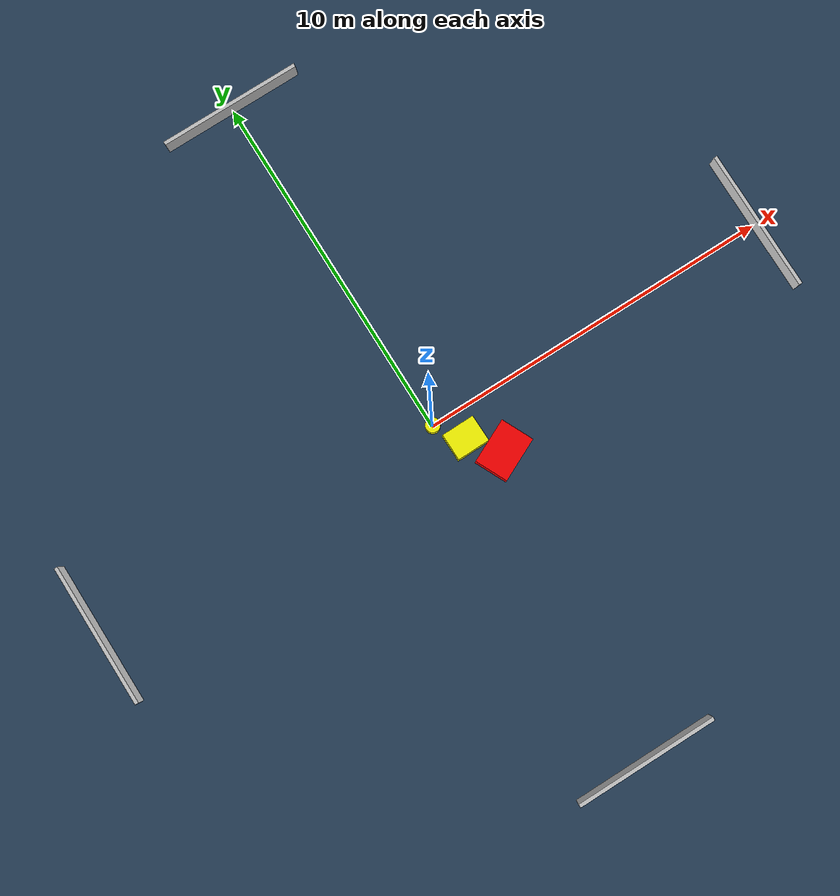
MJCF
<?xml version="1.0" ?>
<mujoco model="generated_environment">
  <option timestep="0.01" integrator="RK4" cone="elliptic"/>
  <default>
    <geom density="1"/>
  </default>
  <asset>
    <texture builtin="gradient" height="3072" name="skybox" rgb1="0.3 0.5 0.7" rgb2="0 0 0" type="skybox" width="512"/>
    <texture builtin="checker" height="300" name="groundplane" rgb1="0.2 0.3 0.4" rgb2="0.1 0.2 0.3" type="2d" width="300"/>
    <material name="groundplane" reflectance="0.2" texrepeat="5 5" texture="groundplane"/>
  </asset>
  <worldbody>
    <light dir="0 0 -1" directional="true" pos="0 0 1.5"/>
    <geom condim="3" friction="0.5 0.005 0.001" material="groundplane" name="floor" pos="0 0 0" size="0 0 0.05" type="plane"/>
    <body name="walls">
      <geom name="wall_1" condim="4" pos="-10.0 0.0 0.3" rgba="0.800000011920929 0.800000011920929 0.800000011920929 1.0" size="0.05 2.0 0.3" type="box"/>
      <geom name="wall_2" condim="4" pos="10.0 0.0 0.3" rgba="0.800000011920929 0.800000011920929 0.800000011920929 1.0" size="0.05 2.0 0.3" type="box"/>
      <geom name="wall_3" condim="4" pos="0.0 -10.0 0.3" rgba="0.800000011920929 0.800000011920929 0.800000011920929 1.0" size="2.0 0.05 0.3" type="box"/>
      <geom name="wall_4" condim="4" pos="0.0 10.0 0.3" rgba="0.800000011920929 0.800000011920929 0.800000011920929 1.0" size="2.0 0.05 0.3" type="box"/>
    </body>
    <body name="robot">
      <joint name="joint_x" type="slide" pos="0 0 0" axis="1 0 0"/>
      <joint name="joint_y" type="slide" pos="0 0 0" axis="0 1 0"/>
      <geom name="robot" type="cylinder" pos="0.0 0.0 0.2" size="0.2 0.2 0.0" mass="5.0" friction="1.0 0.005 0.0001" condim="4" rgba="1.0 1.0 0.0 1.0"/>
    </body>
    <body name="obstacle_1_movable">
      <geom name="obstacle_1_movable" condim="4" pos="0.5301629428078285 -0.7423500473615113 0.3" euler="0 0 90.85269962500392" friction="0.0 0.005 0.001" rgba="1.0 1.0 0.0 1.0" size="0.3769137359350824 0.4601002196517104 0.3" type="box" mass="0.1"/>
      <joint type="free"/>
    </body>
    <body name="obstacle_2_static">
      <geom name="obstacle_2_static" condim="4" pos="1.1940942971795259 -1.5396191521182165 0.3" euler="0 0 25.40487702392828" friction="0.0 0.005 0.001" rgba="1.0 0.0 0.0 1.0" size="0.6327202968388044 0.46930104103610676 0.3" type="box"/>
    </body>
  </worldbody>
  <actuator>
    <motor name="actuator_x" joint="joint_x" gear="1" ctrlrange="-1 1"/>
    <motor name="actuator_y" joint="joint_y" gear="1" ctrlrange="-1 1"/>
  </actuator>
</mujoco>
